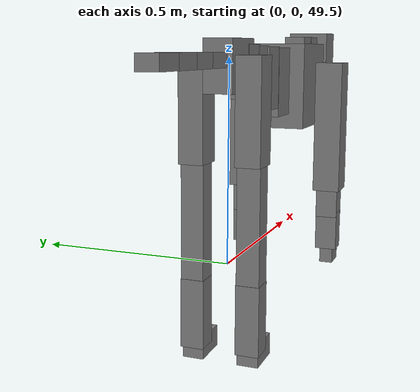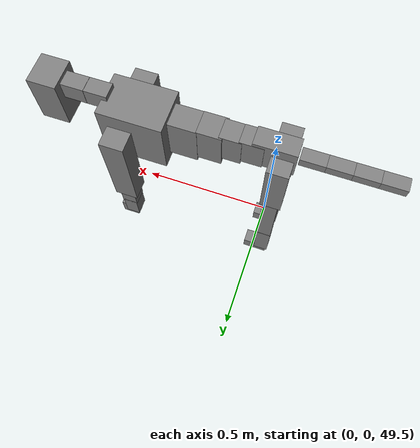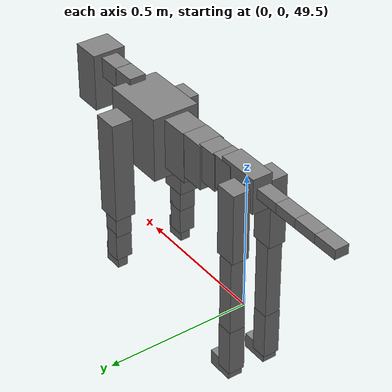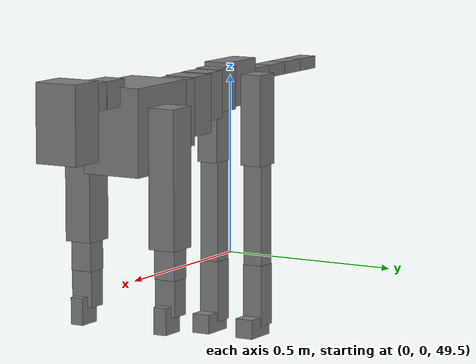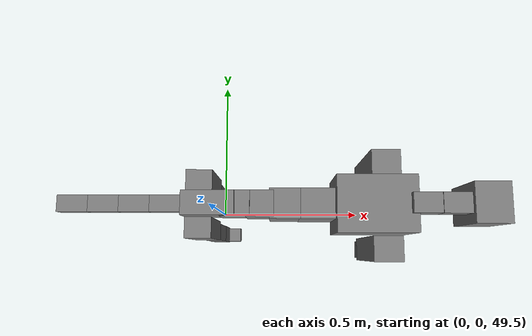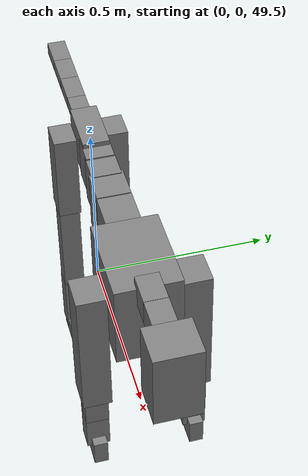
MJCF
<mujoco model="dog">

    <default>
        <joint armature="0.02" stiffness="1" damping="0.2" limited="true"/>
        <geom condim="3" friction="1 0.05 0.05" margin="0.01"/>
        <motor ctrllimited="true" ctrlrange="-1.0 1.0" forcelimited="true" gear="50"/>
    </default>

    <compiler inertiafromgeom="true" angle="radian"/>

    <option timestep="0.016" iterations="50" tolerance="1e-10" solver="Newton" jacobian="dense" cone="pyramidal"/>

    <size nconmax="20000" njmax="60000" nstack="5000000"/>
    <visual>
        <map force="0.1" zfar="30"/>
        <rgba haze="0.15 0.25 0.35 1"/>
        <quality shadowsize="2048"/>
        <global offwidth="800" offheight="800"/>
    </visual>

    <asset>
        <texture type="skybox" builtin="gradient" rgb1="0.3 0.5 0.7" rgb2="0 0 0" width="512" height="512"/>
        <texture name="texplane" type="2d" builtin="checker" rgb1=".2 .3 .4" rgb2=".1 0.15 0.2" width="512" height="512"
                 mark="cross" markrgb=".8 .8 .8"/>
        <texture name="texgeom" type="cube" builtin="flat" mark="cross" width="127" height="1278" rgb1="0.8 0.6 0.4"
                 rgb2="0.8 0.6 0.4" markrgb="1 1 1" random="0.01"/>

        <material name="matplane" reflectance="0.3" texture="texplane" texrepeat="1 1" texuniform="true"/>
        <material name="matgeom" texture="texgeom" texuniform="true" rgba="0.8 0.6 .4 1"/>
    </asset>

    <worldbody>
        <geom name="floor" pos="0 0 0" size="0 0 .25" type="plane" material="matplane" condim="3"/>

        <light directional="false" diffuse=".2 .2 .2" specular="0 0 0" pos="0 0 5" dir="0 0 -1" castshadow="false"/>
        <light mode="targetbodycom" target="torso" directional="false" diffuse=".8 .8 .8" specular="0.3 0.3 0.3"
               pos="0 0 4.0" dir="0 0 -1"/>

        <body name="root" pos="0 0 50">
            <freejoint name="root_1"/>
            <geom type="box" pos="0 0 -0.02" size="0.0774  0.0358  0.063" density="2030"/>

            <body name="spine1" pos="0.054 0 0">
                <joint name="spine1_y" axis="0 1 0" range="0 0.7" limited="true"/>
                <geom type="box" pos="0.02375 0 -0.03" size="0.04375  0.0375  0.05985" density="2030"/>

                <body name="spine2" pos="0.0612 0 0">
                    <joint name="spine2_y" axis="0 1 0" range="-0.15 0.15" limited="true"/>
                    <geom type="box" pos="0.03555  0  -0.04" size="0.04055  0.039  0.06615" density="2030"/>

                    <body name="spine3" pos="0.0730 0 0">
                        <joint name="spine3_y" axis="0 1 0" range="-0.15 0.15" limited="true"/>
                        <geom type="box" pos="0.03555  0  -0.057" size="0.04555  0.0445  0.081" density="2030"/>

                        <body name="spine4" pos="0.0780 0 0">
                            <joint name="spine4_y" axis="0 1 0" range="-0.15 0.15" limited="true"/>
                            <geom type="box" pos="0.05265  0  -0.07" size="0.05265  0.045  0.09135" density="2030"/>

                            <body name="torso" pos="0.1082 0 0">
                                <joint name="torso_y" axis="0 1 0" range="-0.15 0.15" limited="true"/>
                                <geom type="box" pos="0.11925  0  -0.085" size="0.11925  0.085  0.11745"
                                      density="2030"/>

                                <body name="neck1" pos="0.2160  0   0.0180">
                                    <joint name="neck1_y" axis="0 1 0" range="-1.2  -1" limited="true"/>
                                    <geom type="box" pos="0.0423  0  0" size="0.0423  0.03  0.036" density="2325"/>

                                    <body name="neck2" pos="0.0853  0  0">
                                        <joint name="neck2_y" axis="0 1 0" range="0.1  0" limited="true"/>
                                        <geom type="box" pos="0.0423  0  0" size="0.0423  0.03  0.036" density="2325"/>

                                        <body name="head" pos="0.0853  0  0">
                                            <joint name="head_y" axis="0 1 0" range="-0.3  -0.2" limited="true"/>
                                            <geom type="box" pos="0.0531  0  -0.055" size="0.0531  0.06  0.1044"
                                                  density="4030"/>

                                        </body>
                                    </body>
                                </body>

                                <body name="front_shoulder" pos="0.156  0   -0.0480">
                                    <joint name="front_shoulder_y" axis="0 1 0" range="-1 1.5" limited="true"/>
                                    <geom type="box" pos="0 0.13 -0.1601" size="0.0444  0.0380  0.1868" density="1158"/>
                                    <geom type="box" pos="0 -0.13 -0.1601" size="0.0444  0.0380  0.1868"
                                          density="1158"/>

                                    <body name="front_elbow" pos="0  0  -0.3203">
                                        <joint name="front_elbow_y" axis="0 1 0" range="-2 0" limited="true"/>
                                        <geom type="box" pos="0 0.13 -0.0536" size="0.0298  0.0304  0.0536"
                                              density="1081"/>
                                        <geom type="box" pos="0 -0.13 -0.0536" size="0.0298  0.0304  0.0536"
                                              density="1081"/>

                                        <body name="front_wrist" pos="0  0  -0.1072">
                                            <joint name="front_wrist_y" axis="0 1 0" range="-0.2 0" limited="true"/>
                                            <geom type="box" pos="0 0.13 -0.0420" size="0.0273  0.0304  0.0552"
                                                  density="1664"/>
                                            <geom type="box" pos="0 -0.13 -0.0420" size="0.0273  0.0304  0.0552"
                                                  density="1664"/>

                                            <body name="front_finger_end" pos="0  0  -0.0841">
                                                <joint name="front_finger_y" axis="0 1 0" range="-0.4 1"
                                                       limited="true"/>
                                                <geom type="box" pos="0.0186  0.13  -0.0214"
                                                      size="0.0340  0.0186  0.0364" density="1515"/>
                                                <geom type="box" pos="0.0186  -0.13  -0.0214"
                                                      size="0.0340  0.0186  0.0364" density="1515"/>

                                            </body>

                                        </body>
                                    </body>
                                </body>

                            </body>
                        </body>
                    </body>
                </body>
            </body>

            <body name="back_hip" pos="-0.03 0 -0.018">
                <joint name="back_hip_y" axis="0 1 0" range="-1.5 0.3" limited="true"/>
                <geom type="box" pos="0 0.07 -0.1046" size="0.0393  0.0308  0.1274" density="1154"/>
                <geom type="box" pos="0 -0.07 -0.1046" size="0.0393  0.0308  0.1274" density="1154"/>

                <body name="back_knee" pos="0  0  -0.2091">
                    <joint name="back_knee_y" axis="0 1 0" range="0 2.8" limited="true"/>
                    <geom type="box" pos="0 0.07 -0.1580" size="0.0287  0.0283  0.1736" density="1227"/>
                    <geom type="box" pos="0 -0.07 -0.1580" size="0.0287  0.0283  0.1736" density="1227"/>

                    <body name="back_ankle" pos="0  0  -0.3161">
                        <joint name="back_ankle_y" axis="0 1 0" range="-2.2 0" limited="true"/>
                        <geom type="box" pos="0 0.07 -0.0748" size="0.0293  0.0293  0.0861" density="1284"/>
                        <geom type="box" pos="0 -0.07 -0.0748" size="0.0293  0.0293  0.0861" density="1284"/>

                        <body name="back_toe_end" pos="0  0  -0.1497">
                            <joint name="back_toe_y" axis="0 1 0" range="-0.4 1" limited="true"/>
                            <geom type="box" pos="0.0265  0.07  -0.0122" size="0.0486  0.0265  0.0272" density="1515"/>
                            <geom type="box" pos="0.0265  -0.07  -0.0122" size="0.0486  0.0265  0.0272" density="1515"/>

                        </body>
                    </body>
                </body>
            </body>

            <body name="tail1" pos="-0.074 0 -0.006">
                <joint name="tail1_y" axis="0 1 0" range="-0.2 0.2" limited="true"/>
                <geom type="box" pos="-0.0536  0  0" size="0.045  0.025  0.0175" density="1587"/>

                <body name="tail2" pos="-0.09 0 0">
                    <joint name="tail2_y" axis="0 1 0" range="-0.2 0.2" limited="true"/>
                    <geom type="box" pos="-0.0536  0  0" size="0.045  0.025  0.0175" density="1587"/>

                    <body name="tail3" pos="-0.09 0 0">
                        <joint name="tail3_y" axis="0 1 0" range="-0.2 0.2" limited="true"/>
                        <geom type="box" pos="-0.0536  0  0" size="0.045  0.025  0.0175" density="1587"/>

                        <body name="tail4" pos="-0.09 0 0">
                            <joint name="tail4_y" axis="0 1 0" range="-0.2 0.2" limited="true"/>
                            <geom type="box" pos="-0.0536  0  0" size="0.045  0.025  0.0175" density="1587"/>

                        </body>
                    </body>
                </body>
            </body>
        </body>
    </worldbody>

    <actuator>
        <motor joint="spine1_y" forcerange="-150 150     "/>
        <motor joint="spine2_y" forcerange="-150 150     "/>
        <motor joint="spine3_y" forcerange="-150 150     "/>
        <motor joint="spine4_y" forcerange="-150 150     "/>
        <motor joint="torso_y" forcerange="-150 150     "/>
        <motor joint="neck1_y" forcerange="-100 100       "/>
        <motor joint="neck2_y" forcerange="-100 100       "/>
        <motor joint="head_y" forcerange="-150 150       "/>
        <motor joint="front_shoulder_y" forcerange="-193.03 160.09"/>
        <motor joint="front_elbow_y" forcerange="-145.30 175.94"/>
        <motor joint="front_wrist_y" forcerange="-132.54 110.41"/>
        <motor joint="front_finger_y" forcerange="-24.48 34.53"/>
        <motor joint="back_hip_y" forcerange="-356.75 254.32"/>
        <motor joint="back_knee_y" forcerange="-229.37 381.71"/>
        <motor joint="back_angle_y" forcerange="-226.55 141.52"/>
        <motor joint="back_toe_y" forcerange="-64.46 67.83"/>
        <motor joint="tail1_y" forcerange="-50 50     "/>
        <motor joint="tail2_y" forcerange="-50 50     "/>
        <motor joint="tail3_y" forcerange="-50 50     "/>
        <motor joint="tail4_y" forcerange="-50 50     "/>
    </actuator>
</mujoco>
